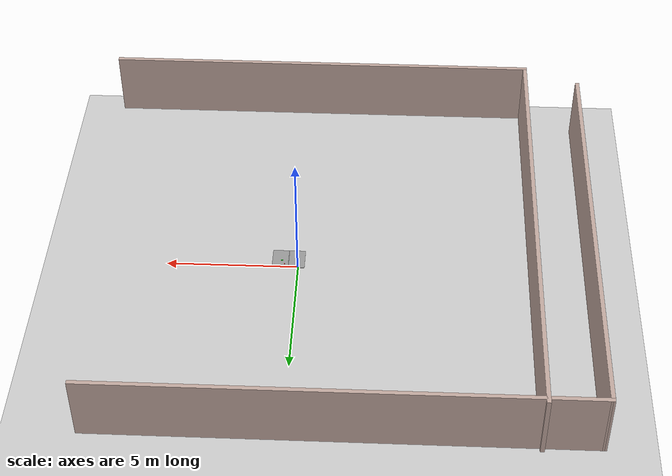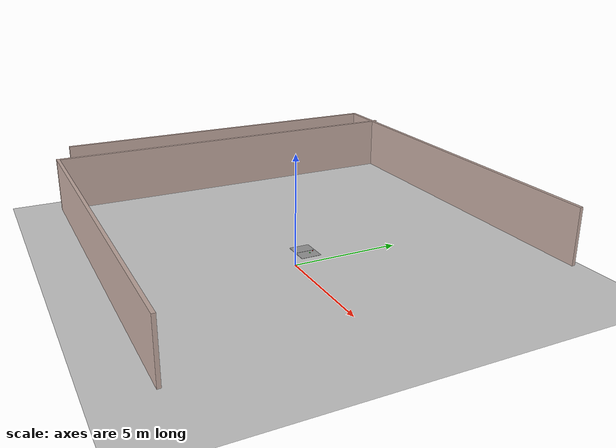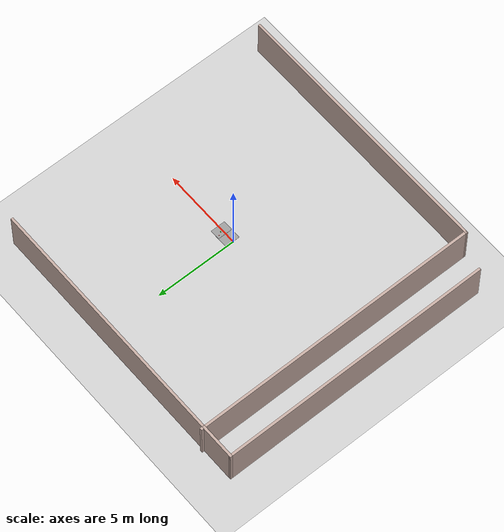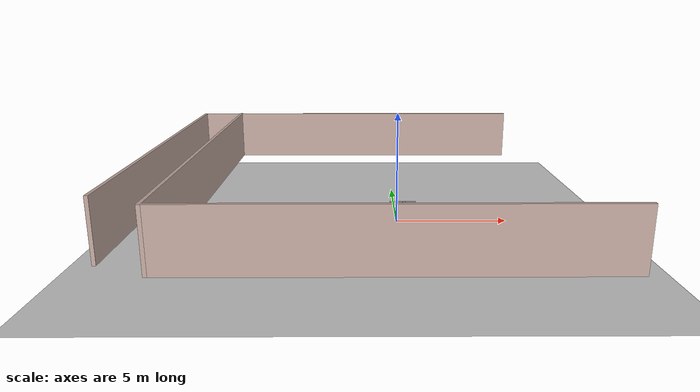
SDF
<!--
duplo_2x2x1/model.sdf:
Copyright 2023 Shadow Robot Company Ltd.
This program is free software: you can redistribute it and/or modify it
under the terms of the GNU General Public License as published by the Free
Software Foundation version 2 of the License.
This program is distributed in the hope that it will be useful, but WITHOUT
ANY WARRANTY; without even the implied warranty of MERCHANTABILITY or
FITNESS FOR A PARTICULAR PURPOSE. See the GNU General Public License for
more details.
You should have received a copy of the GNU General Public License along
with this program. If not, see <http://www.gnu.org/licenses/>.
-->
<?xml version="1.0" ?>
<sdf version="1.4">
  <world name="default">
    <!-- Floor -->
    <include>
      <uri>model://ground</uri>
      <name>ground</name>
      <pose>-0.20 0.60 0.0 0 0 0</pose>
    </include>

    <light type="directional" name="lab_light">
      <pose>1.36691 -3.17532 2.46409 1.29615 -0 0</pose>
      <diffuse>.8 .8 .8 1</diffuse>
      <specular>.2 .2 .2 1</specular>
      <attenuation>
        <range>20</range>
        <constant>0.9</constant>
        <linear>0.01</linear>
        <quadratic>0.001</quadratic>
      </attenuation>
      <direction>0 0 -1</direction>
      <cast_shadows>true</cast_shadows>
    </light>

    <!-- Platform -->
    <include>
      <uri>model://optical_table</uri>
      <static>true</static>
      <name>optical_table_1</name>
      <pose>0 0.3 0.727 0 -0 1.5708</pose>
    </include>

    <include>
      <uri>model://optical_table</uri>
      <static>true</static>
      <name>optical_table</name>
      <pose>0.62 0.3 0.727 0 -0 1.5708</pose>
    </include>

    <!-- Walls -->
    <!-- Right wall -->
    <include>
      <uri>model://wall</uri>
      <static>true</static>
      <name>wall_1</name>
      <pose>-2 0.9 1 0 -0 0</pose>
    </include>
    <!-- Back wall: Modified to allow full extension of arm at startup. Real wall at 0.46315 instead of 1.26315 -->
    <include>
      <uri>model://wall</uri>
      <static>true</static>
      <name>wall_2</name>
      <pose>-0.5 0.5 1 0 -0 1.5708</pose>
    </include>

    <!-- Objects -->
    <include>
      <uri>model://duplo_2x2x1</uri>
      <static>false</static>
      <name>duplo_2x2x1</name>
      <pose>0.45 0.6 0.75 0 -0 0</pose>
    </include>

    <include>
      <uri>model://duplo_2x4x1</uri>
      <static>false</static>
      <name>duplo_2x4x1</name>
      <pose>0.55 0.4 0.75 0 -0 0</pose>
    </include>

    <physics type="ode">
      <gravity>0.000000 0.000000 -9.810000</gravity>
      <ode>
        <solver>
          <type>quick</type>
          <iters>100</iters>
          <precon_iters>0</precon_iters>
          <sor>1.000000</sor>
        </solver>
        <constraints>
          <cfm>0.000000</cfm>
          <erp>0.500000</erp>
          <contact_max_correcting_vel>1000.000000</contact_max_correcting_vel>
          <contact_surface_layer>0.00000</contact_surface_layer>
        </constraints>
      </ode>
      <real_time_update_rate>1000.000000</real_time_update_rate>
      <max_step_size>0.001000</max_step_size>
    </physics>
    <scene>
      <ambient>0.4 0.4 0.4 1</ambient>
      <background>0.7 0.7 1 1</background>
      <shadows>1</shadows>
    </scene>
    <gui fullscreen='0'>
      <camera name='user_camera'>
        <pose frame=''>1.79043 -2.31186 2.16432 -0 0.419643 2.08019</pose>
        <view_controller>orbit</view_controller>
      </camera>
    </gui>
  </world>
</sdf>

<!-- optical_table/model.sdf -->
<sdf version='1.6'>
  <model name='optical_table'>
    <link name='link_0'>
      <pose frame=''>0 0 0 0 -0 0</pose>
      <inertial>
        <mass>1</mass>
        <inertia>
          <ixx>0.166667</ixx>
          <ixy>0</ixy>
          <ixz>0</ixz>
          <iyy>0.166667</iyy>
          <iyz>0</iyz>
          <izz>0.166667</izz>
        </inertia>
        <pose frame=''>0 0 0 0 -0 0</pose>
      </inertial>
      <gravity>0</gravity>
      <self_collide>0</self_collide>
      <kinematic>0</kinematic>
      <visual name='visual'>
        <pose frame=''>0 0 0 0 -0 0</pose>
        <geometry>
          <box>
            <size>0.9 0.6 0.0127</size>
          </box>
        </geometry>
        <material>
          <lighting>1</lighting>
          <script>
            <uri>file://media/materials/scripts/gazebo.material</uri>
            <name>Gazebo/Grey</name>
          </script>
          <ambient>0.3 0.3 0.3 1</ambient>
          <diffuse>0.7 0.7 0.7 1</diffuse>
          <specular>0.01 0.01 0.01 1</specular>
          <emissive>0 0 0 1</emissive>
          <shader type='vertex'>
            <normal_map>__default__</normal_map>
          </shader>
        </material>
        <cast_shadows>1</cast_shadows>
        <transparency>0</transparency>
      </visual>
      <collision name='collision'>
        <laser_retro>0</laser_retro>
        <max_contacts>10</max_contacts>
        <pose frame=''>0 0 0 0 -0 0</pose>
        <geometry>
          <box>
            <size>0.9 0.6 0.0127</size>
          </box>
        </geometry>
        <surface>
          <friction>
            <ode>
              <mu>1</mu>
              <mu2>1</mu2>
              <fdir1>0 0 0</fdir1>
              <slip1>0</slip1>
              <slip2>0</slip2>
            </ode>
            <torsional>
              <coefficient>1</coefficient>
              <patch_radius>0</patch_radius>
              <surface_radius>0</surface_radius>
              <use_patch_radius>1</use_patch_radius>
              <ode>
                <slip>0</slip>
              </ode>
            </torsional>
          </friction>
          <bounce>
            <restitution_coefficient>0</restitution_coefficient>
            <threshold>1e+06</threshold>
          </bounce>
          <contact>
            <collide_without_contact>0</collide_without_contact>
            <collide_without_contact_bitmask>1</collide_without_contact_bitmask>
            <collide_bitmask>1</collide_bitmask>
            <ode>
              <soft_cfm>0</soft_cfm>
              <soft_erp>0.2</soft_erp>
              <kp>1e+13</kp>
              <kd>1</kd>
              <max_vel>0.01</max_vel>
              <min_depth>0</min_depth>
            </ode>
            <bullet>
              <split_impulse>1</split_impulse>
              <split_impulse_penetration_threshold>-0.01</split_impulse_penetration_threshold>
              <soft_cfm>0</soft_cfm>
              <soft_erp>0.2</soft_erp>
              <kp>1e+13</kp>
              <kd>1</kd>
            </bullet>
          </contact>
        </surface>
      </collision>
    </link>
    <static>0</static>
    <allow_auto_disable>1</allow_auto_disable>
  </model>
</sdf>

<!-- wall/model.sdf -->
<sdf version='1.6'>
  <model name='wall'>
    <pose frame=''>-1.26581 1.80502 0 0 -0 0</pose>
    <link name='Wall_0'>
      <collision name='Wall_0_Collision'>
        <geometry>
          <box>
            <size>16.5 0.15 2.5</size>
          </box>
        </geometry>
        <pose frame=''>0 0 1.25 0 -0 0</pose>
      </collision>
      <visual name='Wall_0_Visual'>
        <pose frame=''>0 0 1.25 0 -0 0</pose>
        <geometry>
          <box>
            <size>16.5 0.15 2.5</size>
          </box>
        </geometry>
        <material>
          <script>
            <uri>file://media/materials/scripts/gazebo.material</uri>
            <name>Gazebo/Grey</name>
          </script>
          <ambient>0.760784 0.662745 0.627451 1</ambient>
        </material>
        <meta>
          <layer>0</layer>
        </meta>
      </visual>
      <pose frame=''>-8.71419 -1.8e-05 0 0 0 -1.5708</pose>
    </link>
    <link name='Wall_2'>
      <collision name='Wall_2_Collision'>
        <geometry>
          <box>
            <size>17.5784 0.15 2.5</size>
          </box>
        </geometry>
        <pose frame=''>0 0 1.25 0 -0 0</pose>
      </collision>
      <visual name='Wall_2_Visual'>
        <pose frame=''>0 0 1.25 0 -0 0</pose>
        <geometry>
          <box>
            <size>17.5784 0.15 2.5</size>
          </box>
        </geometry>
        <material>
          <script>
            <uri>file://media/materials/scripts/gazebo.material</uri>
            <name>Gazebo/Grey</name>
          </script>
          <ambient>0.760784 0.662745 0.627451 1</ambient>
        </material>
        <meta>
          <layer>0</layer>
        </meta>
      </visual>
      <pose frame=''>0 8.17066 0 0 0 -0.000496</pose>
    </link>
    <static>1</static>
  </model>
</sdf>

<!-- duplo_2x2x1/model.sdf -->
<sdf version="1.4">
  <model name="duplo_2x2x1">
    <link name="link">
      <inertial>
        <mass>0.2</mass>
      </inertial>
      <collision name="collision">
        <pose>0.0 0.0 0.0 0 0.0 0.0</pose>
        <geometry>
          <mesh>
            <uri>model://duplo_2x2x1/meshes/duplo_2x2x1.stl</uri>
          </mesh>
        </geometry>
      </collision>
      <visual name="visual">
        <pose>0.0 0.0 0.0 0 0.0 0.0</pose>
        <geometry>
          <mesh>
            <uri>model://duplo_2x2x1/meshes/duplo_2x2x1.stl</uri>
          </mesh>
        </geometry>
        <material>
          <ambient>1 0 0 1</ambient>
          <diffuse>1 0 0 1</diffuse>
          <specular>0.1 0.1 0.1 1</specular>
        </material>
      </visual>
    </link>
  </model>
</sdf>

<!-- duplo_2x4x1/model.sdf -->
<sdf version="1.4">
  <model name="duplo_2x4x1">
    <link name="link">
      <inertial>
        <mass>0.2</mass>
      </inertial>
      <collision name="collision">
        <pose>0.0 0.0 0.0 0 0.0 0.0</pose>
        <geometry>
          <mesh>
            <uri>model://duplo_2x4x1/meshes/duplo_2x4x1.stl</uri>
          </mesh>
        </geometry>
      </collision>
      <visual name="visual">
        <pose>0.0 0.0 0.0 0 0.0 0.0</pose>
        <geometry>
          <mesh>
            <uri>model://duplo_2x4x1/meshes/duplo_2x4x1.stl</uri>
          </mesh>
        </geometry>
        <material>
          <ambient>0 1 0 1</ambient>
          <diffuse>0 1 0 1</diffuse>
          <specular>0.1 0.1 0.1 1</specular>
        </material>
      </visual>
    </link>
  </model>
</sdf>
